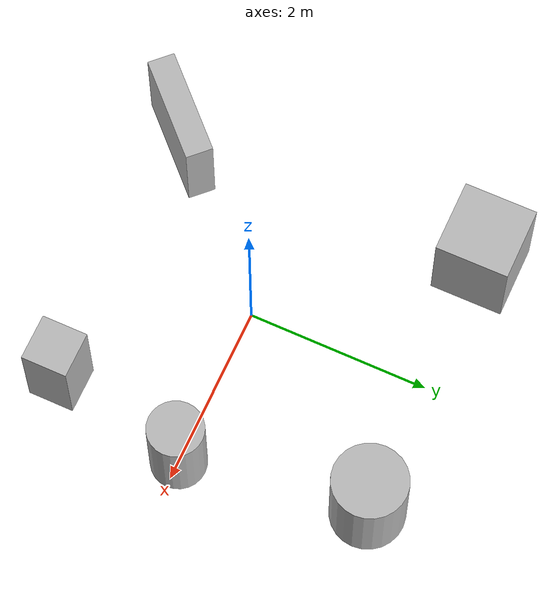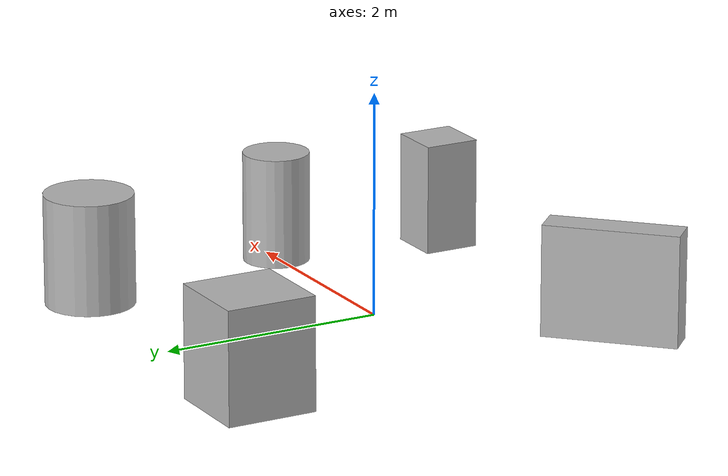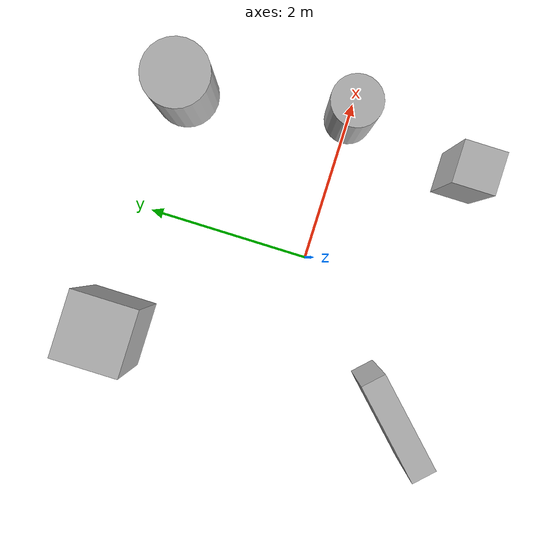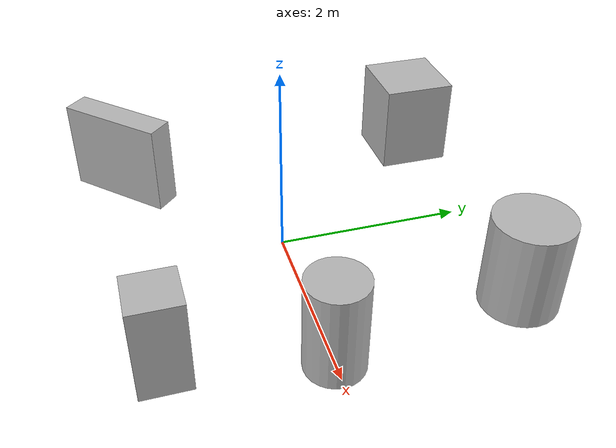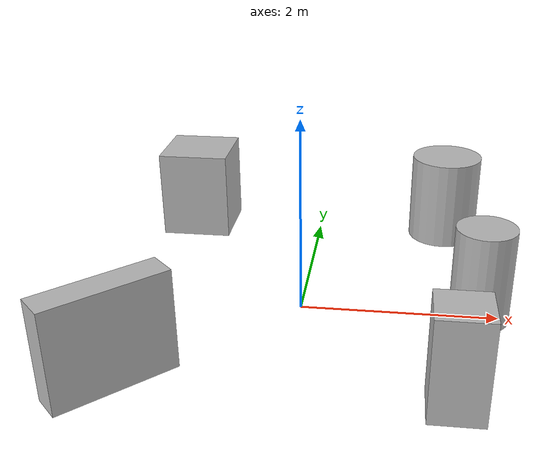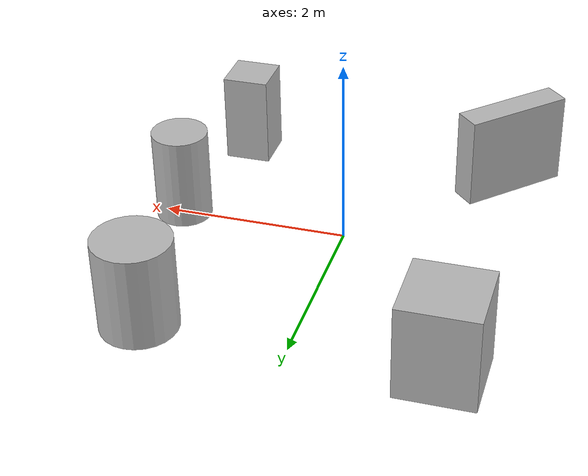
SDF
<?xml version="1.0" ?>
<sdf version="1.8">
  <world name="ue_nav_aut_world">
    <!-- Física optimizada a 100Hz para eliminar saltos temporales en UTM (Mac M3) -->
    <physics name="10ms" type="ignored">
      <max_step_size>0.01</max_step_size>
      <real_time_factor>1.0</real_time_factor>
    </physics>
    <plugin filename="gz-sim-physics-system" name="gz::sim::systems::Physics"/>
    <plugin filename="gz-sim-sensors-system" name="gz::sim::systems::Sensors"><render_engine>ogre</render_engine></plugin>
    <plugin filename="gz-sim-user-commands-system" name="gz::sim::systems::UserCommands"/>
    <plugin filename="gz-sim-scene-broadcaster-system" name="gz::sim::systems::SceneBroadcaster"/>

    <model name="ground_plane">
      <static>true</static>
      <link name="link">
        <collision name="collision"><geometry><plane><normal>0 0 1</normal><size>100 100</size></plane></geometry></collision>
      </link>
    </model>

    <!-- 5 OBSTÁCULOS: CANAL CENTRAL TOTALMENTE LIBRE -->
    <model name="obs1"><static>true</static><pose>1.5 2.0 0.5 0 0 0</pose>
      <link name="l"><collision name="c"><geometry><cylinder><radius>0.4</radius><length>1.0</length></cylinder></geometry></collision>
      <visual name="v"><geometry><cylinder><radius>0.4</radius><length>1.0</length></cylinder></geometry></visual></link>
    </model>
    <model name="obs2"><static>true</static><pose>-1.5 2.0 0.5 0 0 0</pose>
      <link name="l"><collision name="c"><geometry><box><size>0.8 0.8 1.0</size></box></geometry></collision>
      <visual name="v"><geometry><box><size>0.8 0.8 1.0</size></box></geometry></visual></link>
    </model>
    <!-- Obstáculo 3 (Verde): Desplazado a la derecha fuera del camino del robot -->
    <model name="obs3"><static>true</static><pose>1.8 0.0 0.5 0 0 0</pose>
      <link name="l"><collision name="c"><geometry><cylinder><radius>0.3</radius><length>1.0</length></cylinder></geometry></collision>
      <visual name="v"><geometry><cylinder><radius>0.3</radius><length>1.0</length></cylinder></geometry></visual></link>
    </model>
    <model name="obs4"><static>true</static><pose>-1.5 -1.5 0.5 0 0 0.785</pose>
      <link name="l"><collision name="c"><geometry><box><size>1.2 0.3 1.0</size></box></geometry></collision>
      <visual name="v"><geometry><box><size>1.2 0.3 1.0</size></box></geometry></visual></link>
    </model>
    <model name="obs5"><static>true</static><pose>1.5 -1.5 0.5 0 0 0</pose>
      <link name="l"><collision name="c"><geometry><box><size>0.5 0.5 1.0</size></box></geometry></collision>
      <visual name="v"><geometry><box><size>0.5 0.5 1.0</size></box></geometry></visual></link>
    </model>
  </world>
</sdf>
